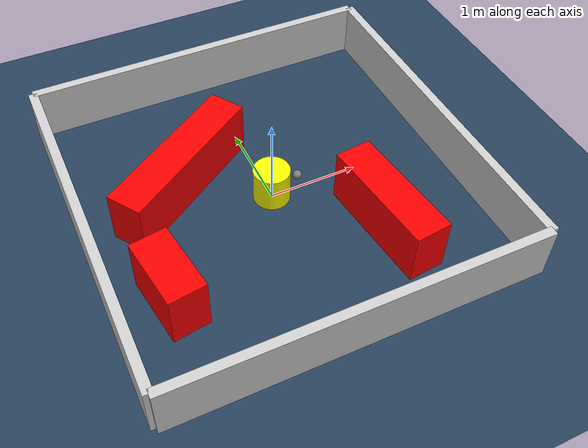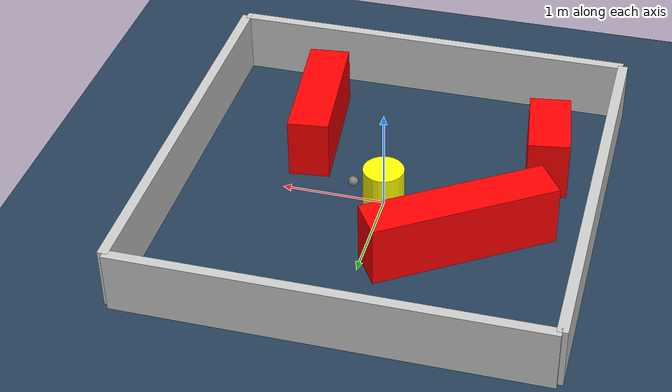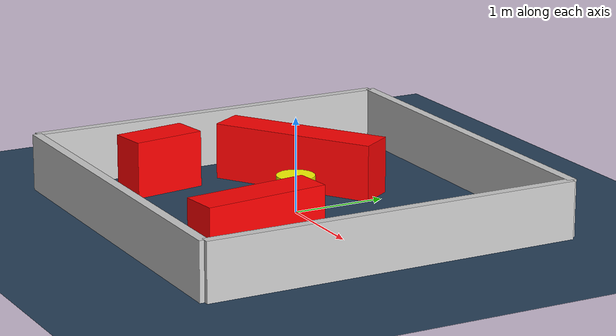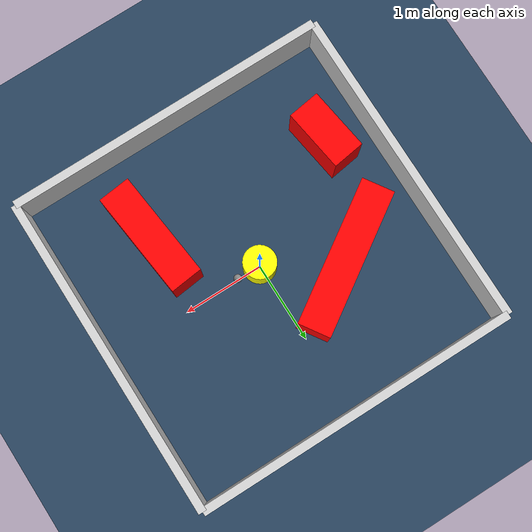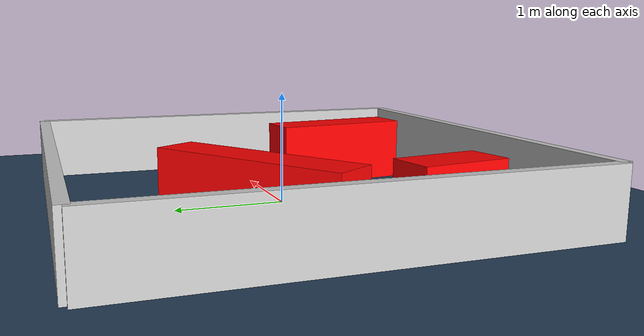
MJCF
<?xml version="1.0" ?>
<mujoco model="generated_environment">
  <option timestep="0.01" integrator="RK4" cone="elliptic"/>
  <default>
    <geom density="1"/>
  </default>
  <asset>
    <texture builtin="gradient" height="3072" rgb1="0.3 0.5 0.7" rgb2="0 0 0" type="skybox" width="512"/>
    <texture builtin="checker" height="300" mark="edge" markrgb="0.8 0.8 0.8" name="groundplane" rgb1="0.2 0.3 0.4" rgb2="0.1 0.2 0.3" type="2d" width="300"/>
    <material name="groundplane" reflectance="0.2" texrepeat="5 5" texture="groundplane" texuniform="true"/>
    <material name="robot" rgba="0.0 1.0 0.0 1"/>
  </asset>
  <worldbody>
    <light dir="0 0 -1" directional="true" pos="0 0 1.5"/>
    <geom condim="4" friction="1.0 0.005 0.001" material="groundplane" name="floor" size="0 0 0.05" type="plane"/>
    <body name="walls">
      <geom name="wall_1" condim="4" pos="-2.0 0.0 0.3" rgba="0.800000011920929 0.800000011920929 0.800000011920929 1.0" size="0.05 2.0 0.3" type="box"/>
      <geom name="wall_2" condim="4" pos="2.0 0.0 0.3" rgba="0.800000011920929 0.800000011920929 0.800000011920929 1.0" size="0.05 2.0 0.3" type="box"/>
      <geom name="wall_3" condim="4" pos="0.0 -2.0 0.3" rgba="0.800000011920929 0.800000011920929 0.800000011920929 1.0" size="2.0 0.05 0.3" type="box"/>
      <geom name="wall_4" condim="4" pos="0.0 2.0 0.3" rgba="0.800000011920929 0.800000011920929 0.800000011920929 1.0" size="2.0 0.05 0.3" type="box"/>
    </body>
    <body name="robot">
      <joint name="joint_x" type="slide" pos="0 0 0" axis="1 0 0"/>
      <joint name="joint_y" type="slide" pos="0 0 0" axis="0 1 0"/>
      <geom name="robot" type="sphere" pos="0.3 0.0 0.2" size="0.05" mass="5." friction="1.0 0.005 0.0001" condim="4" rgba="0.5 0.5 0.5 1.0"/>
      <site name="sensor_ball"/>
    </body>
    <body name="obstacle_movable_1">
      <geom name="obstacle_movable_1" condim="4" pos="0.0 0.0 0.2" euler="0 0 0.0" friction="1.0 0.005 0.001" rgba="1.0 1.0 0.0 1.0" size="0.2 0.2 0.0" type="cylinder" mass="0.1"/>
      <joint type="free"/>
    </body>
    <body name="obstacle_2_static">
      <geom name="obstacle_2_static" condim="4" pos="-0.8336800958763183 0.49733159141739924 0.3" euler="0 0 213.44779328419483" friction="1.0 0.005 0.001" rgba="1 0 0 1" size="0.9046835903518375 0.2 0.3" type="box"/>
    </body>
    <body name="obstacle_3_static">
      <geom name="obstacle_3_static" condim="4" pos="0.889053142299393 -0.8978462494502906 0.3" euler="0 0 276.42427588832896" friction="1.0 0.005 0.001" rgba="1 0 0 1" size="0.6648161001751853 0.2 0.3" type="box"/>
    </body>
    <body name="obstacle_4_static">
      <geom name="obstacle_4_static" condim="4" pos="-1.437130228928783 -0.8563486217333016 0.3" euler="0 0 278.39170887099095" friction="1.0 0.005 0.001" rgba="1 0 0 1" size="0.3917387579744994 0.2 0.3" type="box"/>
    </body>
  </worldbody>
  <actuator>
    <motor name="actuator_x" joint="joint_x" gear="1" ctrlrange="-1 1"/>
    <motor name="actuator_y" joint="joint_y" gear="1" ctrlrange="-1 1"/>
  </actuator>
</mujoco>
